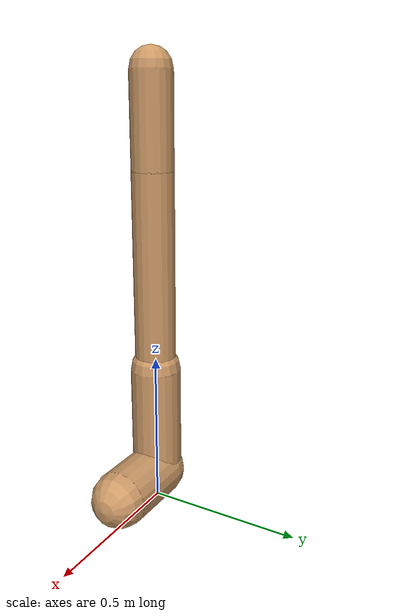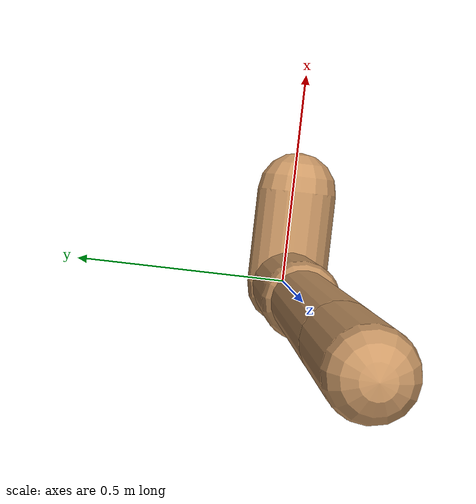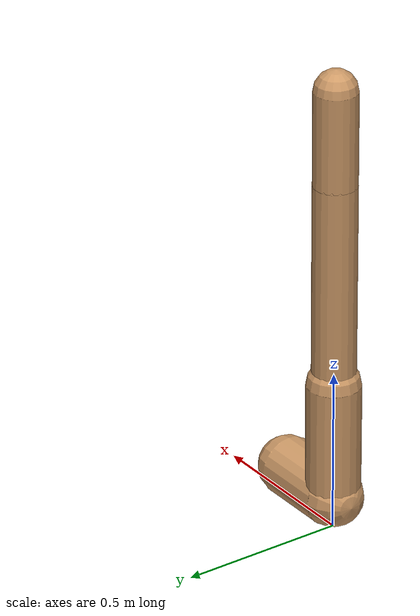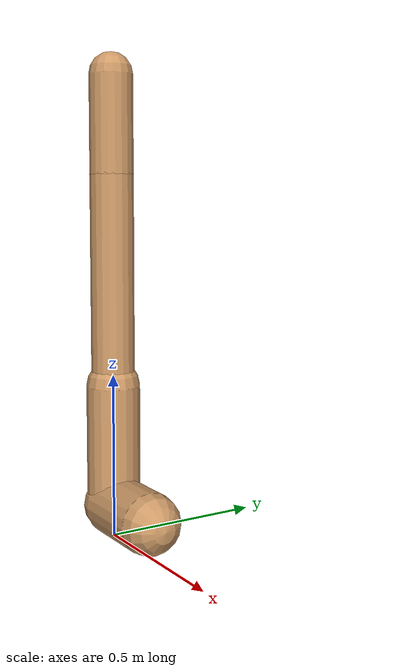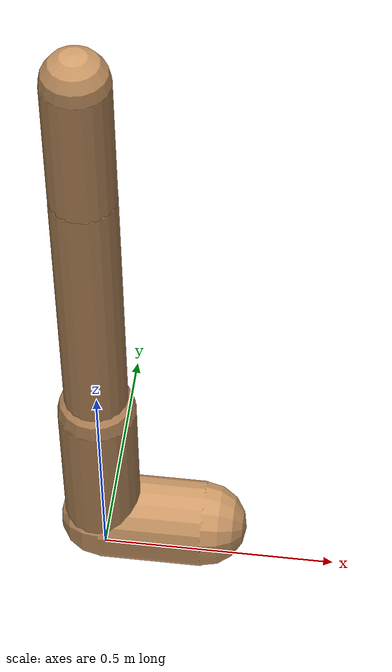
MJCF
<mujoco model="walker2d">
    <compiler angle="degree" coordinate="global" inertiafromgeom="true" />
    <default>
        <joint armature="0.01" damping=".1" limited="true" />
        <geom conaffinity="0" condim="3" contype="1" density="1000" friction="0.8 .1 .1" rgba="0.8 0.6 .4 1" />
    </default>
    <option integrator="RK4" timestep="0.002" />
    <worldbody>
        <body name="torso">
            <geom fromto="0 0 1.3913 0 0 1.1018" name="torso_geom" size="0.0653" type="capsule" />
            <body name="thigh">
                <joint axis="0 -1 0" name="thigh_joint" pos="0 0 1.1018" range="-60 60" type="hinge" />
                <geom fromto="0 0 1.1018 0 0 0.469" name="thigh_geom" size="0.0656" type="capsule" />
                <body name="leg">
                    <joint axis="0 -1 0" name="leg_joint" pos="0 0 0.469" range="-150 0" type="hinge" />
                    <geom fromto="0 0 0.469 0 0 0.1" name="leg_geom" size="0.0812" type="capsule" />
                    <body name="foot">
                        <joint axis="0 -1 0" name="foot_joint" pos="0 0 0.1" range="-45 45" type="hinge" />
                        <geom fromto="0 0 0.1 0.2188 0 0.1" name="foot_geom" size="0.0916" type="capsule" />
                    </body>
                </body>
            </body>
            <body name="thigh_left">
                <joint axis="0 -1 0" name="thigh_left_joint" pos="0 0 1.1018" range="-60 60" type="hinge" />
                <geom fromto="0 0 1.1018 0 0 0.469" name="thigh_left_geom" rgba=".7 .3 .6 1" size="0.0656" type="capsule" />
                <body name="leg_left">
                    <joint axis="0 -1 0" name="leg_left_joint" pos="0 0 0.469" range="-150 0" type="hinge" />
                    <geom fromto="0 0 0.469 0 0 0.1" name="leg_left_geom" rgba=".7 .3 .6 1" size="0.0812" type="capsule" />
                    <body name="foot_left">
                        <joint axis="0 -1 0" name="foot_left_joint" pos="0 0 0.1" range="-45 45" type="hinge" />
                        <geom fromto="0 0 0.1 0.2188 0 0.1" name="foot_left_geom" rgba=".7 .3 .6 1" size="0.0916" type="capsule" />
                    </body>
                </body>
            </body>
        </body>
    </worldbody>
    <actuator>
        <motor ctrllimited="true" ctrlrange="-1.0 1.0" gear="100" joint="thigh_joint" />
        <motor ctrllimited="true" ctrlrange="-1.0 1.0" gear="100" joint="leg_joint" />
        <motor ctrllimited="true" ctrlrange="-1.0 1.0" gear="100" joint="foot_joint" />
        <motor ctrllimited="true" ctrlrange="-1.0 1.0" gear="100" joint="thigh_left_joint" />
        <motor ctrllimited="true" ctrlrange="-1.0 1.0" gear="100" joint="leg_left_joint" />
        <motor ctrllimited="true" ctrlrange="-1.0 1.0" gear="100" joint="foot_left_joint" />
    </actuator>
</mujoco>
